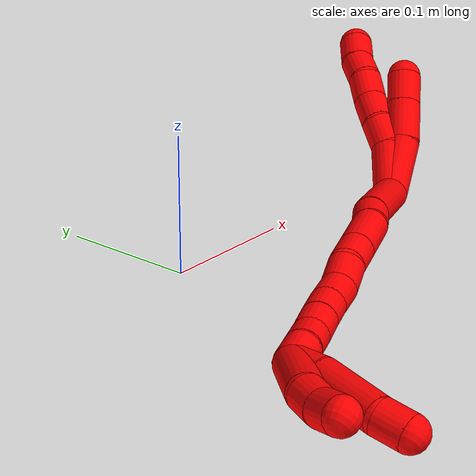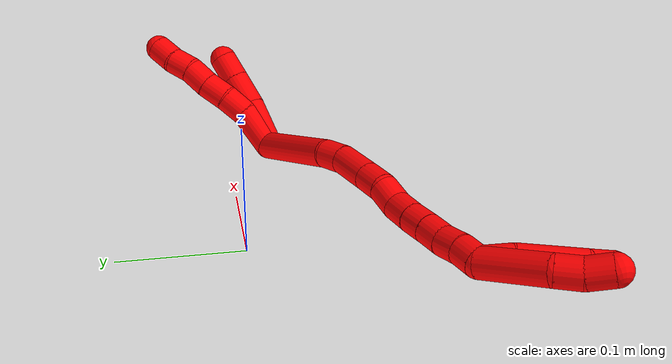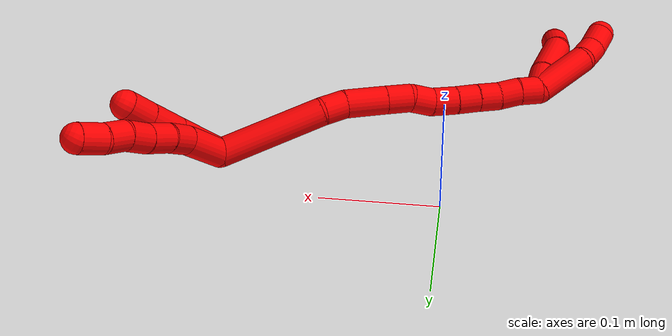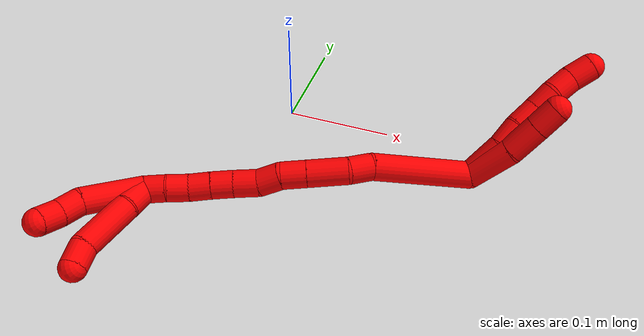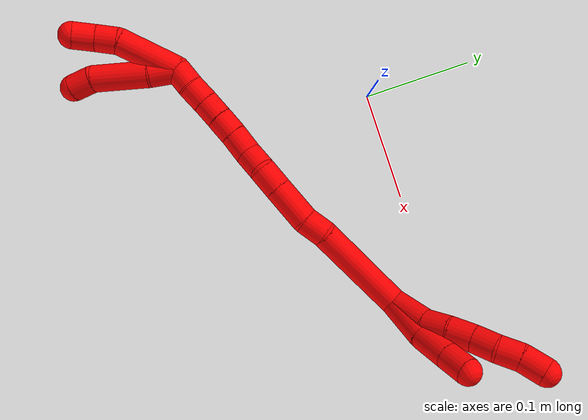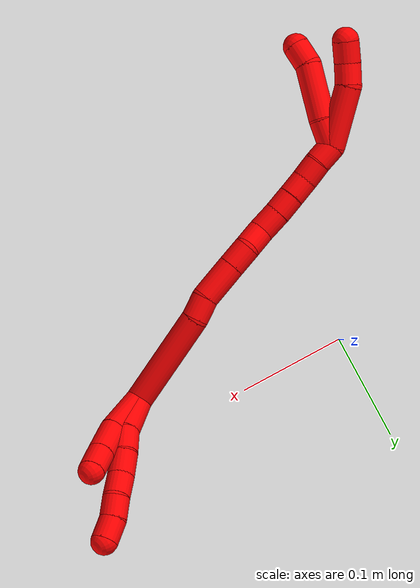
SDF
<sdf version="1.7">
 <world name="default">
  <model name="2">
   <static>0</static>
   <link name="2">
    <collision name="collision-cylinder-e_1_2_8">
     <pose>-0.001193 0.008736 0.017483 -0.4634 -0.060957 0.014386</pose>
     <geometry><cylinder><radius>0.0125</radius><length>0.039161</length></cylinder></geometry>
     <surface>
      <friction><ode><mu>1.16</mu><mu2>1.16</mu2><slip1>0</slip1><slip2>0</slip2></ode></friction>
      <contact><ode><kp>1e+06</kp><kd>1</kd><max_vel>0</max_vel><min_depth>0.001</min_depth></ode></contact>
     </surface>
    </collision>
    <visual name="visual-cylinder-e_1_2_8">
     <pose>-0.001193 0.008736 0.017483 -0.4634 -0.060957 0.014386</pose>
     <geometry><cylinder><radius>0.0125</radius><length>0.039161</length></cylinder></geometry>
     <material><ambient>1 0 0 1</ambient></material>
    </visual>
    <collision name="collision-cylinder-e_2_8_9">
     <pose>-0.0022 0.025266 0.043546 -0.737401 0.015996 -0.006181</pose>
     <geometry><cylinder><radius>0.0125</radius><length>0.023186</length></cylinder></geometry>
     <surface>
      <friction><ode><mu>1.16</mu><mu2>1.16</mu2><slip1>0</slip1><slip2>0</slip2></ode></friction>
      <contact><ode><kp>1e+06</kp><kd>1</kd><max_vel>0</max_vel><min_depth>0.001</min_depth></ode></contact>
     </surface>
    </collision>
    <visual name="visual-cylinder-e_2_8_9">
     <pose>-0.0022 0.025266 0.043546 -0.737401 0.015996 -0.006181</pose>
     <geometry><cylinder><radius>0.0125</radius><length>0.023186</length></cylinder></geometry>
     <material><ambient>1 0 0 1</ambient></material>
    </visual>
    <collision name="collision-cylinder-e_3_9_10">
     <pose>-0.000104 0.040291 0.06095 -0.686519 0.165983 -0.059443</pose>
     <geometry><cylinder><radius>0.0125</radius><length>0.023134</length></cylinder></geometry>
     <surface>
      <friction><ode><mu>1.16</mu><mu2>1.16</mu2><slip1>0</slip1><slip2>0</slip2></ode></friction>
      <contact><ode><kp>1e+06</kp><kd>1</kd><max_vel>0</max_vel><min_depth>0.001</min_depth></ode></contact>
     </surface>
    </collision>
    <visual name="visual-cylinder-e_3_9_10">
     <pose>-0.000104 0.040291 0.06095 -0.686519 0.165983 -0.059443</pose>
     <geometry><cylinder><radius>0.0125</radius><length>0.023134</length></cylinder></geometry>
     <material><ambient>1 0 0 1</ambient></material>
    </visual>
    <collision name="collision-cylinder-e_4_10_11">
     <pose>0.002427 0.053835 0.078649 -0.618291 0.056802 -0.018146</pose>
     <geometry><cylinder><radius>0.0125</radius><length>0.021818</length></cylinder></geometry>
     <surface>
      <friction><ode><mu>1.16</mu><mu2>1.16</mu2><slip1>0</slip1><slip2>0</slip2></ode></friction>
      <contact><ode><kp>1e+06</kp><kd>1</kd><max_vel>0</max_vel><min_depth>0.001</min_depth></ode></contact>
     </surface>
    </collision>
    <visual name="visual-cylinder-e_4_10_11">
     <pose>0.002427 0.053835 0.078649 -0.618291 0.056802 -0.018146</pose>
     <geometry><cylinder><radius>0.0125</radius><length>0.021818</length></cylinder></geometry>
     <material><ambient>1 0 0 1</ambient></material>
    </visual>
    <collision name="collision-cylinder-e_5_11_12">
     <pose>0.005872 0.066575 0.095067 -0.70567 0.277825 -0.10288</pose>
     <geometry><cylinder><radius>0.0125</radius><length>0.020609</length></cylinder></geometry>
     <surface>
      <friction><ode><mu>1.16</mu><mu2>1.16</mu2><slip1>0</slip1><slip2>0</slip2></ode></friction>
      <contact><ode><kp>1e+06</kp><kd>1</kd><max_vel>0</max_vel><min_depth>0.001</min_depth></ode></contact>
     </surface>
    </collision>
    <visual name="visual-cylinder-e_5_11_12">
     <pose>0.005872 0.066575 0.095067 -0.70567 0.277825 -0.10288</pose>
     <geometry><cylinder><radius>0.0125</radius><length>0.020609</length></cylinder></geometry>
     <material><ambient>1 0 0 1</ambient></material>
    </visual>
    <collision name="collision-cylinder-e_6_12_6">
     <pose>0.011433 0.077957 0.112095 -0.481487 0.250201 -0.061729</pose>
     <geometry><cylinder><radius>0.0125</radius><length>0.022092</length></cylinder></geometry>
     <surface>
      <friction><ode><mu>1.16</mu><mu2>1.16</mu2><slip1>0</slip1><slip2>0</slip2></ode></friction>
      <contact><ode><kp>1e+06</kp><kd>1</kd><max_vel>0</max_vel><min_depth>0.001</min_depth></ode></contact>
     </surface>
    </collision>
    <visual name="visual-cylinder-e_6_12_6">
     <pose>0.011433 0.077957 0.112095 -0.481487 0.250201 -0.061729</pose>
     <geometry><cylinder><radius>0.0125</radius><length>0.022092</length></cylinder></geometry>
     <material><ambient>1 0 0 1</ambient></material>
    </visual>
    <collision name="collision-cylinder-e_1_2_13">
     <pose>-0.001448 0.004624 0.021916 -0.207935 -0.064542 0.006737</pose>
     <geometry><cylinder><radius>0.0125</radius><length>0.044891</length></cylinder></geometry>
     <surface>
      <friction><ode><mu>1.16</mu><mu2>1.16</mu2><slip1>0</slip1><slip2>0</slip2></ode></friction>
      <contact><ode><kp>1e+06</kp><kd>1</kd><max_vel>0</max_vel><min_depth>0.001</min_depth></ode></contact>
     </surface>
    </collision>
    <visual name="visual-cylinder-e_1_2_13">
     <pose>-0.001448 0.004624 0.021916 -0.207935 -0.064542 0.006737</pose>
     <geometry><cylinder><radius>0.0125</radius><length>0.044891</length></cylinder></geometry>
     <material><ambient>1 0 0 1</ambient></material>
    </visual>
    <collision name="collision-cylinder-e_2_13_14">
     <pose>-0.004877 0.015261 0.058215 -0.395989 -0.126458 0.025403</pose>
     <geometry><cylinder><radius>0.0125</radius><length>0.03143</length></cylinder></geometry>
     <surface>
      <friction><ode><mu>1.16</mu><mu2>1.16</mu2><slip1>0</slip1><slip2>0</slip2></ode></friction>
      <contact><ode><kp>1e+06</kp><kd>1</kd><max_vel>0</max_vel><min_depth>0.001</min_depth></ode></contact>
     </surface>
    </collision>
    <visual name="visual-cylinder-e_2_13_14">
     <pose>-0.004877 0.015261 0.058215 -0.395989 -0.126458 0.025403</pose>
     <geometry><cylinder><radius>0.0125</radius><length>0.03143</length></cylinder></geometry>
     <material><ambient>1 0 0 1</ambient></material>
    </visual>
    <collision name="collision-cylinder-e_3_14_5">
     <pose>-0.008518 0.025929 0.083358 -0.408325 -0.1406 0.029157</pose>
     <geometry><cylinder><radius>0.0125</radius><length>0.023679</length></cylinder></geometry>
     <surface>
      <friction><ode><mu>1.16</mu><mu2>1.16</mu2><slip1>0</slip1><slip2>0</slip2></ode></friction>
      <contact><ode><kp>1e+06</kp><kd>1</kd><max_vel>0</max_vel><min_depth>0.001</min_depth></ode></contact>
     </surface>
    </collision>
    <visual name="visual-cylinder-e_3_14_5">
     <pose>-0.008518 0.025929 0.083358 -0.408325 -0.1406 0.029157</pose>
     <geometry><cylinder><radius>0.0125</radius><length>0.023679</length></cylinder></geometry>
     <material><ambient>1 0 0 1</ambient></material>
    </visual>
    <collision name="collision-cylinder-e_1_2_15">
     <pose>-0.035864 -0.004468 -0.030157 2.99449 -0.866273 -2.82556</pose>
     <geometry><cylinder><radius>0.0125</radius><length>0.09414</length></cylinder></geometry>
     <surface>
      <friction><ode><mu>1.16</mu><mu2>1.16</mu2><slip1>0</slip1><slip2>0</slip2></ode></friction>
      <contact><ode><kp>1e+06</kp><kd>1</kd><max_vel>0</max_vel><min_depth>0.001</min_depth></ode></contact>
     </surface>
    </collision>
    <visual name="visual-cylinder-e_1_2_15">
     <pose>-0.035864 -0.004468 -0.030157 2.99449 -0.866273 -2.82556</pose>
     <geometry><cylinder><radius>0.0125</radius><length>0.09414</length></cylinder></geometry>
     <material><ambient>1 0 0 1</ambient></material>
    </visual>
    <collision name="collision-cylinder-e_2_15_16">
     <pose>-0.078516 -0.012052 -0.068101 2.76103 -0.680447 -2.14496</pose>
     <geometry><cylinder><radius>0.0125</radius><length>0.021581</length></cylinder></geometry>
     <surface>
      <friction><ode><mu>1.16</mu><mu2>1.16</mu2><slip1>0</slip1><slip2>0</slip2></ode></friction>
      <contact><ode><kp>1e+06</kp><kd>1</kd><max_vel>0</max_vel><min_depth>0.001</min_depth></ode></contact>
     </surface>
    </collision>
    <visual name="visual-cylinder-e_2_15_16">
     <pose>-0.078516 -0.012052 -0.068101 2.76103 -0.680447 -2.14496</pose>
     <geometry><cylinder><radius>0.0125</radius><length>0.021581</length></cylinder></geometry>
     <material><ambient>1 0 0 1</ambient></material>
    </visual>
    <collision name="collision-cylinder-e_3_16_17">
     <pose>-0.095286 -0.016795 -0.091535 3.03796 -0.565361 -2.7882</pose>
     <geometry><cylinder><radius>0.0125</radius><length>0.037261</length></cylinder></geometry>
     <surface>
      <friction><ode><mu>1.16</mu><mu2>1.16</mu2><slip1>0</slip1><slip2>0</slip2></ode></friction>
      <contact><ode><kp>1e+06</kp><kd>1</kd><max_vel>0</max_vel><min_depth>0.001</min_depth></ode></contact>
     </surface>
    </collision>
    <visual name="visual-cylinder-e_3_16_17">
     <pose>-0.095286 -0.016795 -0.091535 3.03796 -0.565361 -2.7882</pose>
     <geometry><cylinder><radius>0.0125</radius><length>0.037261</length></cylinder></geometry>
     <material><ambient>1 0 0 1</ambient></material>
    </visual>
    <collision name="collision-cylinder-e_4_17_18">
     <pose>-0.111319 -0.019346 -0.116874 3.0466 -0.556182 -2.81162</pose>
     <geometry><cylinder><radius>0.0125</radius><length>0.022927</length></cylinder></geometry>
     <surface>
      <friction><ode><mu>1.16</mu><mu2>1.16</mu2><slip1>0</slip1><slip2>0</slip2></ode></friction>
      <contact><ode><kp>1e+06</kp><kd>1</kd><max_vel>0</max_vel><min_depth>0.001</min_depth></ode></contact>
     </surface>
    </collision>
    <visual name="visual-cylinder-e_4_17_18">
     <pose>-0.111319 -0.019346 -0.116874 3.0466 -0.556182 -2.81162</pose>
     <geometry><cylinder><radius>0.0125</radius><length>0.022927</length></cylinder></geometry>
     <material><ambient>1 0 0 1</ambient></material>
    </visual>
    <collision name="collision-cylinder-e_5_18_19">
     <pose>-0.119974 -0.022032 -0.13665 2.96861 -0.249063 -1.93</pose>
     <geometry><cylinder><radius>0.0125</radius><length>0.021127</length></cylinder></geometry>
     <surface>
      <friction><ode><mu>1.16</mu><mu2>1.16</mu2><slip1>0</slip1><slip2>0</slip2></ode></friction>
      <contact><ode><kp>1e+06</kp><kd>1</kd><max_vel>0</max_vel><min_depth>0.001</min_depth></ode></contact>
     </surface>
    </collision>
    <visual name="visual-cylinder-e_5_18_19">
     <pose>-0.119974 -0.022032 -0.13665 2.96861 -0.249063 -1.93</pose>
     <geometry><cylinder><radius>0.0125</radius><length>0.021127</length></cylinder></geometry>
     <material><ambient>1 0 0 1</ambient></material>
    </visual>
    <collision name="collision-cylinder-e_6_19_20">
     <pose>-0.12859 -0.024243 -0.156421 3.09528 -0.554962 -2.97934</pose>
     <geometry><cylinder><radius>0.0125</radius><length>0.022819</length></cylinder></geometry>
     <surface>
      <friction><ode><mu>1.16</mu><mu2>1.16</mu2><slip1>0</slip1><slip2>0</slip2></ode></friction>
      <contact><ode><kp>1e+06</kp><kd>1</kd><max_vel>0</max_vel><min_depth>0.001</min_depth></ode></contact>
     </surface>
    </collision>
    <visual name="visual-cylinder-e_6_19_20">
     <pose>-0.12859 -0.024243 -0.156421 3.09528 -0.554962 -2.97934</pose>
     <geometry><cylinder><radius>0.0125</radius><length>0.022819</length></cylinder></geometry>
     <material><ambient>1 0 0 1</ambient></material>
    </visual>
    <collision name="collision-cylinder-e_7_20_21">
     <pose>-0.140104 -0.025591 -0.174474 3.03444 -0.579143 -2.78541</pose>
     <geometry><cylinder><radius>0.0125</radius><length>0.020106</length></cylinder></geometry>
     <surface>
      <friction><ode><mu>1.16</mu><mu2>1.16</mu2><slip1>0</slip1><slip2>0</slip2></ode></friction>
      <contact><ode><kp>1e+06</kp><kd>1</kd><max_vel>0</max_vel><min_depth>0.001</min_depth></ode></contact>
     </surface>
    </collision>
    <visual name="visual-cylinder-e_7_20_21">
     <pose>-0.140104 -0.025591 -0.174474 3.03444 -0.579143 -2.78541</pose>
     <geometry><cylinder><radius>0.0125</radius><length>0.020106</length></cylinder></geometry>
     <material><ambient>1 0 0 1</ambient></material>
    </visual>
    <collision name="collision-cylinder-e_8_21_22">
     <pose>-0.150743 -0.02756 -0.191366 3.01695 -0.538764 -2.69701</pose>
     <geometry><cylinder><radius>0.0125</radius><length>0.020024</length></cylinder></geometry>
     <surface>
      <friction><ode><mu>1.16</mu><mu2>1.16</mu2><slip1>0</slip1><slip2>0</slip2></ode></friction>
      <contact><ode><kp>1e+06</kp><kd>1</kd><max_vel>0</max_vel><min_depth>0.001</min_depth></ode></contact>
     </surface>
    </collision>
    <visual name="visual-cylinder-e_8_21_22">
     <pose>-0.150743 -0.02756 -0.191366 3.01695 -0.538764 -2.69701</pose>
     <geometry><cylinder><radius>0.0125</radius><length>0.020024</length></cylinder></geometry>
     <material><ambient>1 0 0 1</ambient></material>
    </visual>
    <collision name="collision-cylinder-e_9_22_23">
     <pose>-0.162243 -0.029626 -0.207546 3.01192 -0.689492 -2.78384</pose>
     <geometry><cylinder><radius>0.0125</radius><length>0.020006</length></cylinder></geometry>
     <surface>
      <friction><ode><mu>1.16</mu><mu2>1.16</mu2><slip1>0</slip1><slip2>0</slip2></ode></friction>
      <contact><ode><kp>1e+06</kp><kd>1</kd><max_vel>0</max_vel><min_depth>0.001</min_depth></ode></contact>
     </surface>
    </collision>
    <visual name="visual-cylinder-e_9_22_23">
     <pose>-0.162243 -0.029626 -0.207546 3.01192 -0.689492 -2.78384</pose>
     <geometry><cylinder><radius>0.0125</radius><length>0.020006</length></cylinder></geometry>
     <material><ambient>1 0 0 1</ambient></material>
    </visual>
    <collision name="collision-cylinder-e_10_23_1">
     <pose>-0.173858 -0.031223 -0.223694 3.07121 -0.552586 -2.89454</pose>
     <geometry><cylinder><radius>0.0125</radius><length>0.02001</length></cylinder></geometry>
     <surface>
      <friction><ode><mu>1.16</mu><mu2>1.16</mu2><slip1>0</slip1><slip2>0</slip2></ode></friction>
      <contact><ode><kp>1e+06</kp><kd>1</kd><max_vel>0</max_vel><min_depth>0.001</min_depth></ode></contact>
     </surface>
    </collision>
    <visual name="visual-cylinder-e_10_23_1">
     <pose>-0.173858 -0.031223 -0.223694 3.07121 -0.552586 -2.89454</pose>
     <geometry><cylinder><radius>0.0125</radius><length>0.02001</length></cylinder></geometry>
     <material><ambient>1 0 0 1</ambient></material>
    </visual>
    <collision name="collision-cylinder-e_1_1_24">
     <pose>-0.200343 -0.043764 -0.247794 2.48837 -0.824118 -1.82296</pose>
     <geometry><cylinder><radius>0.0125</radius><length>0.057863</length></cylinder></geometry>
     <surface>
      <friction><ode><mu>1.16</mu><mu2>1.16</mu2><slip1>0</slip1><slip2>0</slip2></ode></friction>
      <contact><ode><kp>1e+06</kp><kd>1</kd><max_vel>0</max_vel><min_depth>0.001</min_depth></ode></contact>
     </surface>
    </collision>
    <visual name="visual-cylinder-e_1_1_24">
     <pose>-0.200343 -0.043764 -0.247794 2.48837 -0.824118 -1.82296</pose>
     <geometry><cylinder><radius>0.0125</radius><length>0.057863</length></cylinder></geometry>
     <material><ambient>1 0 0 1</ambient></material>
    </visual>
    <collision name="collision-cylinder-e_2_24_25">
     <pose>-0.227419 -0.062955 -0.268112 2.14734 -0.594172 -1.02742</pose>
     <geometry><cylinder><radius>0.0125</radius><length>0.020868</length></cylinder></geometry>
     <surface>
      <friction><ode><mu>1.16</mu><mu2>1.16</mu2><slip1>0</slip1><slip2>0</slip2></ode></friction>
      <contact><ode><kp>1e+06</kp><kd>1</kd><max_vel>0</max_vel><min_depth>0.001</min_depth></ode></contact>
     </surface>
    </collision>
    <visual name="visual-cylinder-e_2_24_25">
     <pose>-0.227419 -0.062955 -0.268112 2.14734 -0.594172 -1.02742</pose>
     <geometry><cylinder><radius>0.0125</radius><length>0.020868</length></cylinder></geometry>
     <material><ambient>1 0 0 1</ambient></material>
    </visual>
    <collision name="collision-cylinder-e_3_25_4">
     <pose>-0.240739 -0.077175 -0.275748 1.9678 -0.780034 -1.10723</pose>
     <geometry><cylinder><radius>0.0125</radius><length>0.021269</length></cylinder></geometry>
     <surface>
      <friction><ode><mu>1.16</mu><mu2>1.16</mu2><slip1>0</slip1><slip2>0</slip2></ode></friction>
      <contact><ode><kp>1e+06</kp><kd>1</kd><max_vel>0</max_vel><min_depth>0.001</min_depth></ode></contact>
     </surface>
    </collision>
    <visual name="visual-cylinder-e_3_25_4">
     <pose>-0.240739 -0.077175 -0.275748 1.9678 -0.780034 -1.10723</pose>
     <geometry><cylinder><radius>0.0125</radius><length>0.021269</length></cylinder></geometry>
     <material><ambient>1 0 0 1</ambient></material>
    </visual>
    <collision name="collision-cylinder-e_1_1_26">
     <pose>-0.185421 -0.043008 -0.234783 1.7987 -0.502568 -0.624959</pose>
     <geometry><cylinder><radius>0.0125</radius><length>0.026208</length></cylinder></geometry>
     <surface>
      <friction><ode><mu>1.16</mu><mu2>1.16</mu2><slip1>0</slip1><slip2>0</slip2></ode></friction>
      <contact><ode><kp>1e+06</kp><kd>1</kd><max_vel>0</max_vel><min_depth>0.001</min_depth></ode></contact>
     </surface>
    </collision>
    <visual name="visual-cylinder-e_1_1_26">
     <pose>-0.185421 -0.043008 -0.234783 1.7987 -0.502568 -0.624959</pose>
     <geometry><cylinder><radius>0.0125</radius><length>0.026208</length></cylinder></geometry>
     <material><ambient>1 0 0 1</ambient></material>
    </visual>
    <collision name="collision-cylinder-e_2_26_27">
     <pose>-0.202992 -0.076155 -0.246542 1.96611 -0.441965 -0.650396</pose>
     <geometry><cylinder><radius>0.0125</radius><length>0.05265</length></cylinder></geometry>
     <surface>
      <friction><ode><mu>1.16</mu><mu2>1.16</mu2><slip1>0</slip1><slip2>0</slip2></ode></friction>
      <contact><ode><kp>1e+06</kp><kd>1</kd><max_vel>0</max_vel><min_depth>0.001</min_depth></ode></contact>
     </surface>
    </collision>
    <visual name="visual-cylinder-e_2_26_27">
     <pose>-0.202992 -0.076155 -0.246542 1.96611 -0.441965 -0.650396</pose>
     <geometry><cylinder><radius>0.0125</radius><length>0.05265</length></cylinder></geometry>
     <material><ambient>1 0 0 1</ambient></material>
    </visual>
    <collision name="collision-cylinder-e_3_27_3">
     <pose>-0.216048 -0.108374 -0.257515 1.74538 -0.170752 -0.203296</pose>
     <geometry><cylinder><radius>0.0125</radius><length>0.021142</length></cylinder></geometry>
     <surface>
      <friction><ode><mu>1.16</mu><mu2>1.16</mu2><slip1>0</slip1><slip2>0</slip2></ode></friction>
      <contact><ode><kp>1e+06</kp><kd>1</kd><max_vel>0</max_vel><min_depth>0.001</min_depth></ode></contact>
     </surface>
    </collision>
    <visual name="visual-cylinder-e_3_27_3">
     <pose>-0.216048 -0.108374 -0.257515 1.74538 -0.170752 -0.203296</pose>
     <geometry><cylinder><radius>0.0125</radius><length>0.021142</length></cylinder></geometry>
     <material><ambient>1 0 0 1</ambient></material>
    </visual>
    <collision name="collision-sphere-3">
     <pose>-0.217845 -0.118634 -0.259324 0 -0 0</pose>
     <geometry><sphere><radius>0.0125</radius></sphere></geometry>
     <surface>
      <friction><ode><mu>1.16</mu><mu2>1.16</mu2><slip1>0</slip1><slip2>0</slip2></ode></friction>
      <contact><ode><kp>1e+06</kp><kd>1</kd><max_vel>0</max_vel><min_depth>0.001</min_depth></ode></contact>
     </surface>
    </collision>
    <visual name="visual-sphere-3">
     <pose>-0.217845 -0.118634 -0.259324 0 -0 0</pose>
     <geometry><sphere><radius>0.0125</radius></sphere></geometry>
     <material><ambient>1 0 0 1</ambient></material>
    </visual>
    <collision name="collision-sphere-27">
     <pose>-0.214252 -0.098115 -0.255705 0 -0 0</pose>
     <geometry><sphere><radius>0.0125</radius></sphere></geometry>
     <surface>
      <friction><ode><mu>1.16</mu><mu2>1.16</mu2><slip1>0</slip1><slip2>0</slip2></ode></friction>
      <contact><ode><kp>1e+06</kp><kd>1</kd><max_vel>0</max_vel><min_depth>0.001</min_depth></ode></contact>
     </surface>
    </collision>
    <visual name="visual-sphere-27">
     <pose>-0.214252 -0.098115 -0.255705 0 -0 0</pose>
     <geometry><sphere><radius>0.0125</radius></sphere></geometry>
     <material><ambient>1 0 0 1</ambient></material>
    </visual>
    <collision name="collision-sphere-26">
     <pose>-0.191733 -0.054195 -0.237378 0 -0 0</pose>
     <geometry><sphere><radius>0.0125</radius></sphere></geometry>
     <surface>
      <friction><ode><mu>1.16</mu><mu2>1.16</mu2><slip1>0</slip1><slip2>0</slip2></ode></friction>
      <contact><ode><kp>1e+06</kp><kd>1</kd><max_vel>0</max_vel><min_depth>0.001</min_depth></ode></contact>
     </surface>
    </collision>
    <visual name="visual-sphere-26">
     <pose>-0.191733 -0.054195 -0.237378 0 -0 0</pose>
     <geometry><sphere><radius>0.0125</radius></sphere></geometry>
     <material><ambient>1 0 0 1</ambient></material>
    </visual>
    <collision name="collision-sphere-4">
     <pose>-0.248219 -0.084147 -0.278671 0 -0 0</pose>
     <geometry><sphere><radius>0.0125</radius></sphere></geometry>
     <surface>
      <friction><ode><mu>1.16</mu><mu2>1.16</mu2><slip1>0</slip1><slip2>0</slip2></ode></friction>
      <contact><ode><kp>1e+06</kp><kd>1</kd><max_vel>0</max_vel><min_depth>0.001</min_depth></ode></contact>
     </surface>
    </collision>
    <visual name="visual-sphere-4">
     <pose>-0.248219 -0.084147 -0.278671 0 -0 0</pose>
     <geometry><sphere><radius>0.0125</radius></sphere></geometry>
     <material><ambient>1 0 0 1</ambient></material>
    </visual>
    <collision name="collision-sphere-25">
     <pose>-0.23326 -0.070203 -0.272825 0 -0 0</pose>
     <geometry><sphere><radius>0.0125</radius></sphere></geometry>
     <surface>
      <friction><ode><mu>1.16</mu><mu2>1.16</mu2><slip1>0</slip1><slip2>0</slip2></ode></friction>
      <contact><ode><kp>1e+06</kp><kd>1</kd><max_vel>0</max_vel><min_depth>0.001</min_depth></ode></contact>
     </surface>
    </collision>
    <visual name="visual-sphere-25">
     <pose>-0.23326 -0.070203 -0.272825 0 -0 0</pose>
     <geometry><sphere><radius>0.0125</radius></sphere></geometry>
     <material><ambient>1 0 0 1</ambient></material>
    </visual>
    <collision name="collision-sphere-24">
     <pose>-0.221577 -0.055707 -0.263399 0 -0 0</pose>
     <geometry><sphere><radius>0.0125</radius></sphere></geometry>
     <surface>
      <friction><ode><mu>1.16</mu><mu2>1.16</mu2><slip1>0</slip1><slip2>0</slip2></ode></friction>
      <contact><ode><kp>1e+06</kp><kd>1</kd><max_vel>0</max_vel><min_depth>0.001</min_depth></ode></contact>
     </surface>
    </collision>
    <visual name="visual-sphere-24">
     <pose>-0.221577 -0.055707 -0.263399 0 -0 0</pose>
     <geometry><sphere><radius>0.0125</radius></sphere></geometry>
     <material><ambient>1 0 0 1</ambient></material>
    </visual>
    <collision name="collision-sphere-1">
     <pose>-0.179109 -0.031822 -0.232189 0 -0 0</pose>
     <geometry><sphere><radius>0.0125</radius></sphere></geometry>
     <surface>
      <friction><ode><mu>1.16</mu><mu2>1.16</mu2><slip1>0</slip1><slip2>0</slip2></ode></friction>
      <contact><ode><kp>1e+06</kp><kd>1</kd><max_vel>0</max_vel><min_depth>0.001</min_depth></ode></contact>
     </surface>
    </collision>
    <visual name="visual-sphere-1">
     <pose>-0.179109 -0.031822 -0.232189 0 -0 0</pose>
     <geometry><sphere><radius>0.0125</radius></sphere></geometry>
     <material><ambient>1 0 0 1</ambient></material>
    </visual>
    <collision name="collision-sphere-23">
     <pose>-0.168606 -0.030624 -0.215199 0 -0 0</pose>
     <geometry><sphere><radius>0.0125</radius></sphere></geometry>
     <surface>
      <friction><ode><mu>1.16</mu><mu2>1.16</mu2><slip1>0</slip1><slip2>0</slip2></ode></friction>
      <contact><ode><kp>1e+06</kp><kd>1</kd><max_vel>0</max_vel><min_depth>0.001</min_depth></ode></contact>
     </surface>
    </collision>
    <visual name="visual-sphere-23">
     <pose>-0.168606 -0.030624 -0.215199 0 -0 0</pose>
     <geometry><sphere><radius>0.0125</radius></sphere></geometry>
     <material><ambient>1 0 0 1</ambient></material>
    </visual>
    <collision name="collision-sphere-22">
     <pose>-0.15588 -0.028628 -0.199893 0 -0 0</pose>
     <geometry><sphere><radius>0.0125</radius></sphere></geometry>
     <surface>
      <friction><ode><mu>1.16</mu><mu2>1.16</mu2><slip1>0</slip1><slip2>0</slip2></ode></friction>
      <contact><ode><kp>1e+06</kp><kd>1</kd><max_vel>0</max_vel><min_depth>0.001</min_depth></ode></contact>
     </surface>
    </collision>
    <visual name="visual-sphere-22">
     <pose>-0.15588 -0.028628 -0.199893 0 -0 0</pose>
     <geometry><sphere><radius>0.0125</radius></sphere></geometry>
     <material><ambient>1 0 0 1</ambient></material>
    </visual>
    <collision name="collision-sphere-21">
     <pose>-0.145606 -0.026491 -0.182839 0 -0 0</pose>
     <geometry><sphere><radius>0.0125</radius></sphere></geometry>
     <surface>
      <friction><ode><mu>1.16</mu><mu2>1.16</mu2><slip1>0</slip1><slip2>0</slip2></ode></friction>
      <contact><ode><kp>1e+06</kp><kd>1</kd><max_vel>0</max_vel><min_depth>0.001</min_depth></ode></contact>
     </surface>
    </collision>
    <visual name="visual-sphere-21">
     <pose>-0.145606 -0.026491 -0.182839 0 -0 0</pose>
     <geometry><sphere><radius>0.0125</radius></sphere></geometry>
     <material><ambient>1 0 0 1</ambient></material>
    </visual>
    <collision name="collision-sphere-12">
     <pose>0.008698 0.073001 0.10261 0 -0 0</pose>
     <geometry><sphere><radius>0.0125</radius></sphere></geometry>
     <surface>
      <friction><ode><mu>1.16</mu><mu2>1.16</mu2><slip1>0</slip1><slip2>0</slip2></ode></friction>
      <contact><ode><kp>1e+06</kp><kd>1</kd><max_vel>0</max_vel><min_depth>0.001</min_depth></ode></contact>
     </surface>
    </collision>
    <visual name="visual-sphere-12">
     <pose>0.008698 0.073001 0.10261 0 -0 0</pose>
     <geometry><sphere><radius>0.0125</radius></sphere></geometry>
     <material><ambient>1 0 0 1</ambient></material>
    </visual>
    <collision name="collision-sphere-11">
     <pose>0.003046 0.060148 0.087524 0 -0 0</pose>
     <geometry><sphere><radius>0.0125</radius></sphere></geometry>
     <surface>
      <friction><ode><mu>1.16</mu><mu2>1.16</mu2><slip1>0</slip1><slip2>0</slip2></ode></friction>
      <contact><ode><kp>1e+06</kp><kd>1</kd><max_vel>0</max_vel><min_depth>0.001</min_depth></ode></contact>
     </surface>
    </collision>
    <visual name="visual-sphere-11">
     <pose>0.003046 0.060148 0.087524 0 -0 0</pose>
     <geometry><sphere><radius>0.0125</radius></sphere></geometry>
     <material><ambient>1 0 0 1</ambient></material>
    </visual>
    <collision name="collision-sphere-10">
     <pose>0.001807 0.047522 0.069774 0 -0 0</pose>
     <geometry><sphere><radius>0.0125</radius></sphere></geometry>
     <surface>
      <friction><ode><mu>1.16</mu><mu2>1.16</mu2><slip1>0</slip1><slip2>0</slip2></ode></friction>
      <contact><ode><kp>1e+06</kp><kd>1</kd><max_vel>0</max_vel><min_depth>0.001</min_depth></ode></contact>
     </surface>
    </collision>
    <visual name="visual-sphere-10">
     <pose>0.001807 0.047522 0.069774 0 -0 0</pose>
     <geometry><sphere><radius>0.0125</radius></sphere></geometry>
     <material><ambient>1 0 0 1</ambient></material>
    </visual>
    <collision name="collision-sphere-9">
     <pose>-0.002015 0.03306 0.052127 0 -0 0</pose>
     <geometry><sphere><radius>0.0125</radius></sphere></geometry>
     <surface>
      <friction><ode><mu>1.16</mu><mu2>1.16</mu2><slip1>0</slip1><slip2>0</slip2></ode></friction>
      <contact><ode><kp>1e+06</kp><kd>1</kd><max_vel>0</max_vel><min_depth>0.001</min_depth></ode></contact>
     </surface>
    </collision>
    <visual name="visual-sphere-9">
     <pose>-0.002015 0.03306 0.052127 0 -0 0</pose>
     <geometry><sphere><radius>0.0125</radius></sphere></geometry>
     <material><ambient>1 0 0 1</ambient></material>
    </visual>
    <collision name="collision-sphere-2">
     <geometry><sphere><radius>0.0125</radius></sphere></geometry>
     <surface>
      <friction><ode><mu>1.16</mu><mu2>1.16</mu2><slip1>0</slip1><slip2>0</slip2></ode></friction>
      <contact><ode><kp>1e+06</kp><kd>1</kd><max_vel>0</max_vel><min_depth>0.001</min_depth></ode></contact>
     </surface>
    </collision>
    <visual name="visual-sphere-2">
     <geometry><sphere><radius>0.0125</radius></sphere></geometry>
     <material><ambient>1 0 0 1</ambient></material>
    </visual>
    <collision name="collision-sphere-19">
     <pose>-0.122578 -0.023794 -0.146735 0 -0 0</pose>
     <geometry><sphere><radius>0.0125</radius></sphere></geometry>
     <surface>
      <friction><ode><mu>1.16</mu><mu2>1.16</mu2><slip1>0</slip1><slip2>0</slip2></ode></friction>
      <contact><ode><kp>1e+06</kp><kd>1</kd><max_vel>0</max_vel><min_depth>0.001</min_depth></ode></contact>
     </surface>
    </collision>
    <visual name="visual-sphere-19">
     <pose>-0.122578 -0.023794 -0.146735 0 -0 0</pose>
     <geometry><sphere><radius>0.0125</radius></sphere></geometry>
     <material><ambient>1 0 0 1</ambient></material>
    </visual>
    <collision name="collision-sphere-8">
     <pose>-0.002386 0.017472 0.034966 0 -0 0</pose>
     <geometry><sphere><radius>0.0125</radius></sphere></geometry>
     <surface>
      <friction><ode><mu>1.16</mu><mu2>1.16</mu2><slip1>0</slip1><slip2>0</slip2></ode></friction>
      <contact><ode><kp>1e+06</kp><kd>1</kd><max_vel>0</max_vel><min_depth>0.001</min_depth></ode></contact>
     </surface>
    </collision>
    <visual name="visual-sphere-8">
     <pose>-0.002386 0.017472 0.034966 0 -0 0</pose>
     <geometry><sphere><radius>0.0125</radius></sphere></geometry>
     <material><ambient>1 0 0 1</ambient></material>
    </visual>
    <collision name="collision-sphere-6">
     <pose>0.014168 0.082913 0.12158 0 -0 0</pose>
     <geometry><sphere><radius>0.0125</radius></sphere></geometry>
     <surface>
      <friction><ode><mu>1.16</mu><mu2>1.16</mu2><slip1>0</slip1><slip2>0</slip2></ode></friction>
      <contact><ode><kp>1e+06</kp><kd>1</kd><max_vel>0</max_vel><min_depth>0.001</min_depth></ode></contact>
     </surface>
    </collision>
    <visual name="visual-sphere-6">
     <pose>0.014168 0.082913 0.12158 0 -0 0</pose>
     <geometry><sphere><radius>0.0125</radius></sphere></geometry>
     <material><ambient>1 0 0 1</ambient></material>
    </visual>
    <collision name="collision-sphere-13">
     <pose>-0.002895 0.009248 0.043832 0 -0 0</pose>
     <geometry><sphere><radius>0.0125</radius></sphere></geometry>
     <surface>
      <friction><ode><mu>1.16</mu><mu2>1.16</mu2><slip1>0</slip1><slip2>0</slip2></ode></friction>
      <contact><ode><kp>1e+06</kp><kd>1</kd><max_vel>0</max_vel><min_depth>0.001</min_depth></ode></contact>
     </surface>
    </collision>
    <visual name="visual-sphere-13">
     <pose>-0.002895 0.009248 0.043832 0 -0 0</pose>
     <geometry><sphere><radius>0.0125</radius></sphere></geometry>
     <material><ambient>1 0 0 1</ambient></material>
    </visual>
    <collision name="collision-sphere-14">
     <pose>-0.006859 0.021274 0.072599 0 -0 0</pose>
     <geometry><sphere><radius>0.0125</radius></sphere></geometry>
     <surface>
      <friction><ode><mu>1.16</mu><mu2>1.16</mu2><slip1>0</slip1><slip2>0</slip2></ode></friction>
      <contact><ode><kp>1e+06</kp><kd>1</kd><max_vel>0</max_vel><min_depth>0.001</min_depth></ode></contact>
     </surface>
    </collision>
    <visual name="visual-sphere-14">
     <pose>-0.006859 0.021274 0.072599 0 -0 0</pose>
     <geometry><sphere><radius>0.0125</radius></sphere></geometry>
     <material><ambient>1 0 0 1</ambient></material>
    </visual>
    <collision name="collision-sphere-5">
     <pose>-0.010178 0.030584 0.094117 0 -0 0</pose>
     <geometry><sphere><radius>0.0125</radius></sphere></geometry>
     <surface>
      <friction><ode><mu>1.16</mu><mu2>1.16</mu2><slip1>0</slip1><slip2>0</slip2></ode></friction>
      <contact><ode><kp>1e+06</kp><kd>1</kd><max_vel>0</max_vel><min_depth>0.001</min_depth></ode></contact>
     </surface>
    </collision>
    <visual name="visual-sphere-5">
     <pose>-0.010178 0.030584 0.094117 0 -0 0</pose>
     <geometry><sphere><radius>0.0125</radius></sphere></geometry>
     <material><ambient>1 0 0 1</ambient></material>
    </visual>
    <collision name="collision-sphere-15">
     <pose>-0.071727 -0.008937 -0.060313 0 -0 0</pose>
     <geometry><sphere><radius>0.0125</radius></sphere></geometry>
     <surface>
      <friction><ode><mu>1.16</mu><mu2>1.16</mu2><slip1>0</slip1><slip2>0</slip2></ode></friction>
      <contact><ode><kp>1e+06</kp><kd>1</kd><max_vel>0</max_vel><min_depth>0.001</min_depth></ode></contact>
     </surface>
    </collision>
    <visual name="visual-sphere-15">
     <pose>-0.071727 -0.008937 -0.060313 0 -0 0</pose>
     <geometry><sphere><radius>0.0125</radius></sphere></geometry>
     <material><ambient>1 0 0 1</ambient></material>
    </visual>
    <collision name="collision-sphere-16">
     <pose>-0.085305 -0.015168 -0.075888 0 -0 0</pose>
     <geometry><sphere><radius>0.0125</radius></sphere></geometry>
     <surface>
      <friction><ode><mu>1.16</mu><mu2>1.16</mu2><slip1>0</slip1><slip2>0</slip2></ode></friction>
      <contact><ode><kp>1e+06</kp><kd>1</kd><max_vel>0</max_vel><min_depth>0.001</min_depth></ode></contact>
     </surface>
    </collision>
    <visual name="visual-sphere-16">
     <pose>-0.085305 -0.015168 -0.075888 0 -0 0</pose>
     <geometry><sphere><radius>0.0125</radius></sphere></geometry>
     <material><ambient>1 0 0 1</ambient></material>
    </visual>
    <collision name="collision-sphere-17">
     <pose>-0.105266 -0.018423 -0.107182 0 -0 0</pose>
     <geometry><sphere><radius>0.0125</radius></sphere></geometry>
     <surface>
      <friction><ode><mu>1.16</mu><mu2>1.16</mu2><slip1>0</slip1><slip2>0</slip2></ode></friction>
      <contact><ode><kp>1e+06</kp><kd>1</kd><max_vel>0</max_vel><min_depth>0.001</min_depth></ode></contact>
     </surface>
    </collision>
    <visual name="visual-sphere-17">
     <pose>-0.105266 -0.018423 -0.107182 0 -0 0</pose>
     <geometry><sphere><radius>0.0125</radius></sphere></geometry>
     <material><ambient>1 0 0 1</ambient></material>
    </visual>
    <collision name="collision-sphere-18">
     <pose>-0.117371 -0.020269 -0.126566 0 -0 0</pose>
     <geometry><sphere><radius>0.0125</radius></sphere></geometry>
     <surface>
      <friction><ode><mu>1.16</mu><mu2>1.16</mu2><slip1>0</slip1><slip2>0</slip2></ode></friction>
      <contact><ode><kp>1e+06</kp><kd>1</kd><max_vel>0</max_vel><min_depth>0.001</min_depth></ode></contact>
     </surface>
    </collision>
    <visual name="visual-sphere-18">
     <pose>-0.117371 -0.020269 -0.126566 0 -0 0</pose>
     <geometry><sphere><radius>0.0125</radius></sphere></geometry>
     <material><ambient>1 0 0 1</ambient></material>
    </visual>
    <collision name="collision-sphere-20">
     <pose>-0.134602 -0.024691 -0.166108 0 -0 0</pose>
     <geometry><sphere><radius>0.0125</radius></sphere></geometry>
     <surface>
      <friction><ode><mu>1.16</mu><mu2>1.16</mu2><slip1>0</slip1><slip2>0</slip2></ode></friction>
      <contact><ode><kp>1e+06</kp><kd>1</kd><max_vel>0</max_vel><min_depth>0.001</min_depth></ode></contact>
     </surface>
    </collision>
    <visual name="visual-sphere-20">
     <pose>-0.134602 -0.024691 -0.166108 0 -0 0</pose>
     <geometry><sphere><radius>0.0125</radius></sphere></geometry>
     <material><ambient>1 0 0 1</ambient></material>
    </visual>
    <inertial>
     <pose>-0.094492 -0.014051 -0.092208 0 -0 0</pose>
     <mass>0.75</mass>
     <inertia>
      <ixx>-8.4e-05</ixx>
      <ixy>0</ixy>
      <ixz>0</ixz>
      <iyy>7.7e-05</iyy>
      <iyz>0</iyz>
      <izz>0.000104</izz>
     </inertia>
    </inertial>
   </link>
   <pose>0.190177 -0.038654 0.009378 0.418182 0.918588 0.648949</pose>
  </model>
 </world>
</sdf>
